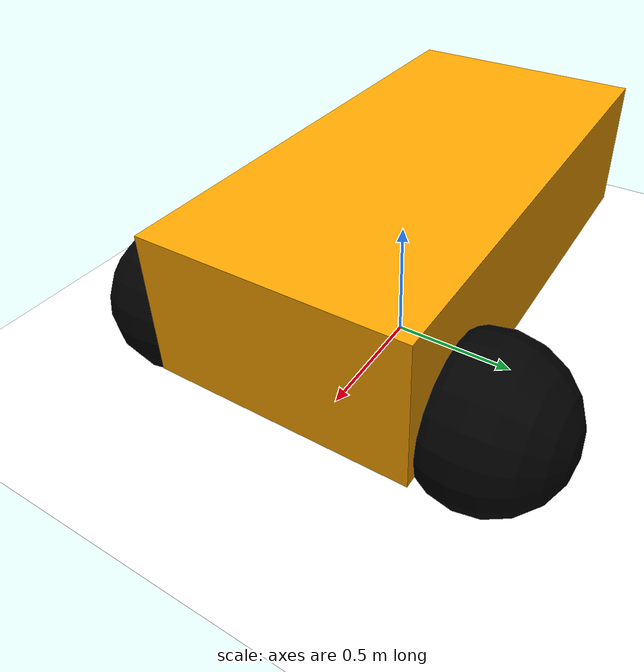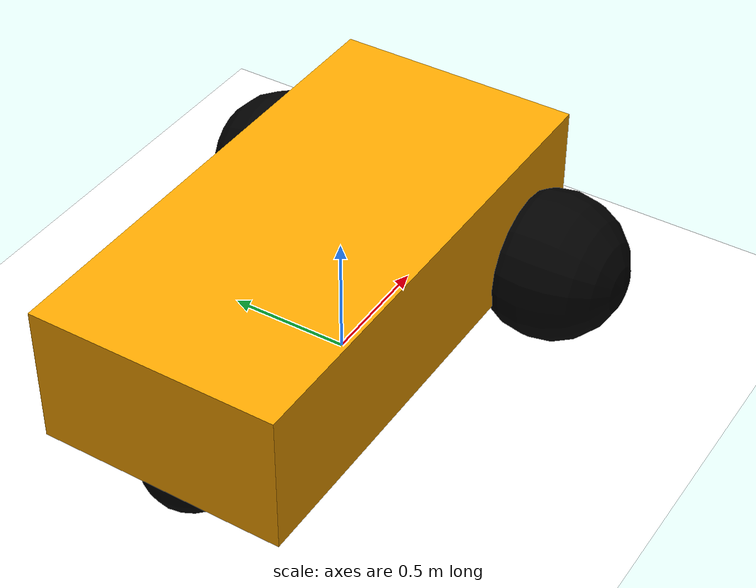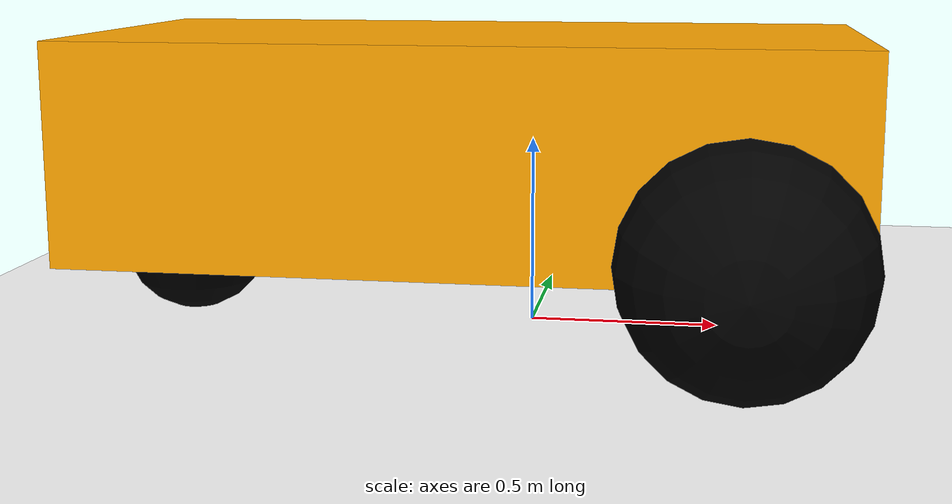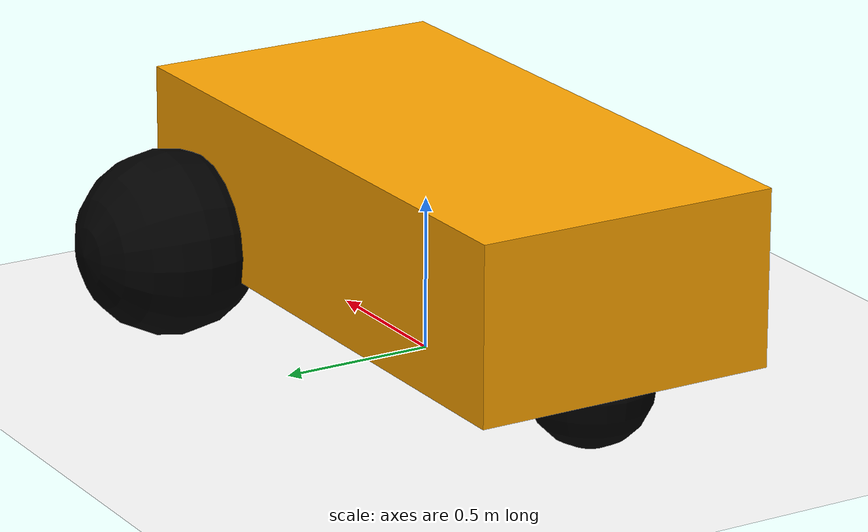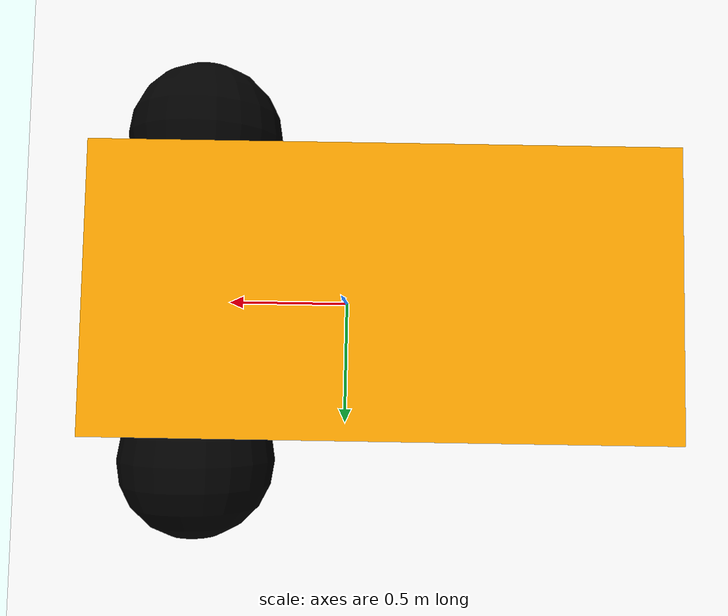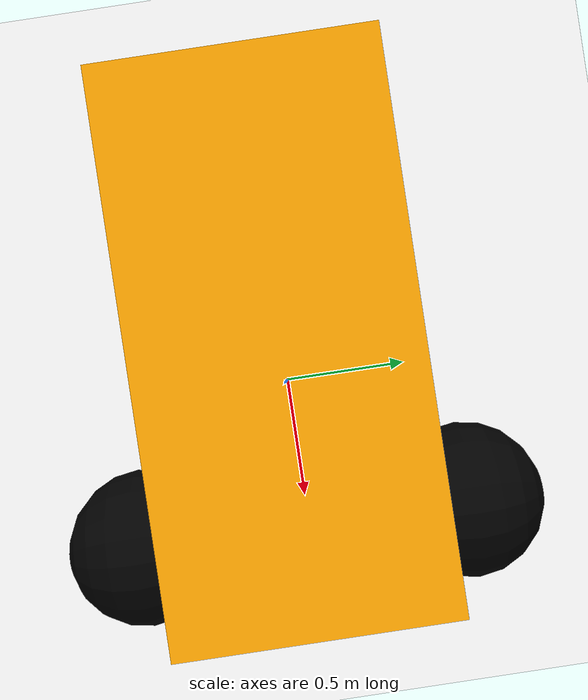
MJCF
<mujoco>
    <compiler angle="radian" />
	<option gravity="0 0 -9.81">
		<flag contact="enable" />
	</option>
	<worldbody>
        <light diffuse=".5 .5 .5" pos="0 0 5" dir="0 0 -1" />
		<geom type="plane" size="20 20 0.1" rgba="1 1 1 1" />

        <body name="chassis" pos="-0.151427 0 0.5" euler="0 0 0">
            <joint type="free" />
            <geom type="box" size="1.00571 0.5 0.284363" rgba="1 0.65 0 1" />
            <inertial pos="0 0 0" mass="1.14395" diaginertia="0.126164 0.416519 0.481014" />
            <body name="left_wheel" pos="0.70571 0.625029 -0.2" euler="-1.5707 0 0">
                <joint name="left_wheel_joint" type="hinge" axis="0 0 1" pos="0 0 0" damping="0.2" />
                <geom type="sphere" size="0.3" rgba="0 0 0 1" />
                <inertial pos="0 0 0" mass="2" diaginertia="0.145833 0.145833 0.125" />
            </body>
            <body name="right_wheel" pos="0.70571 -0.625029 -0.2" euler="-1.5707 0 0">
                <joint name="right_wheel_joint" type="hinge" axis="0 0 1" pos="0 0 0" damping="0.2" />
                <geom type="sphere" size="0.3" rgba="0 0 0 1" />
                <inertial pos="0 0 0" mass="2" diaginertia="0.145833 0.145833 0.125" />
            </body>
            <body name="caster" pos="-0.805711 0 -0.3" euler="0 0 0">
                <geom type="sphere" size="0.2" rgba="0 0 0 1" />
                <inertial pos="0 0 0" mass="0.005" diaginertia="0.1 0.1 0.1" />
            </body>
        </body>
	</worldbody>
    <actuator>
        <!-- Left wheel velocity actuator -->
        <velocity name="act_vel_left_wheel_joint" joint="left_wheel_joint"
                  kv="10.0"
                  ctrlrange="-50 50" forcerange="-100 100"/>

        <!-- Right wheel velocity actuator -->
        <velocity name="act_vel_right_wheel_joint" joint="right_wheel_joint"
                  kv="10.0"
                  ctrlrange="-50 50" forcerange="-100 100"/>
    </actuator>
    <contact>
        <exclude body1="chassis" body2="left_wheel" />
        <exclude body1="chassis" body2="right_wheel" />
    </contact>
</mujoco>
